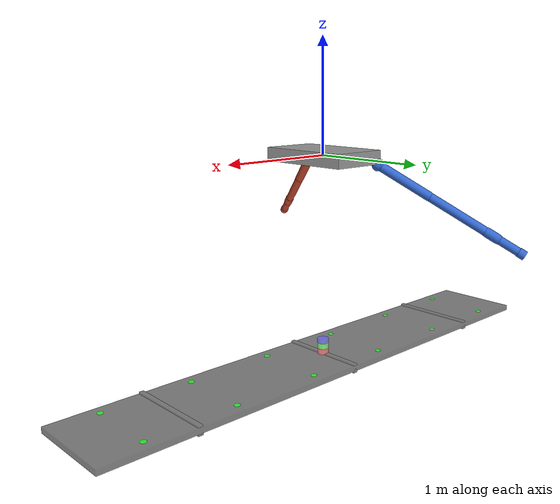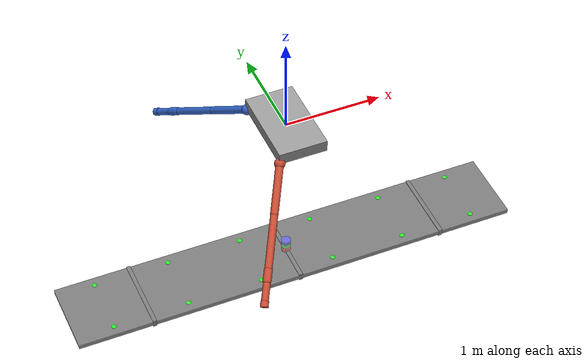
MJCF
<mujoco model="VISPA_crawling_rwa3_7dof_01pct">

  <!-- ==================== COMPILER ==================== -->
  <compiler angle="radian" eulerseq="XYZ" autolimits="true"/>

  <!-- ==================== OPTIONS ==================== -->
  <option gravity="0 0 0" timestep="0.001" integrator="RK4">
    <!-- RK4: best momentum conservation for coupled floating-base systems -->
    <flag energy="enable" contact="enable"/>
  </option>

  <!-- ==================== VISUAL ==================== -->
  <visual>
    <headlight diffuse="0.6 0.6 0.6" ambient="0.3 0.3 0.3"/>
    <rgba com="0 1 0 0" contactforce="1 0 0 0.5"/>
    <scale com="0.05" contactwidth="0.02" contactheight="0.05"
           forcewidth="0.02" framelength="0.15" framewidth="0.005"/>
  </visual>

  <!-- ==================== DEFAULTS ==================== -->
  <default>
    <!-- Robot joints -->
    <default class="robot_joint">
      <joint damping="0.05" armature="0.05" limited="true"
             range="-3.14159 3.14159"/>
      <default class="arm_a">
        <geom rgba="0.2 0.4 0.8 1" contype="0" conaffinity="0"/>
      </default>
      <default class="arm_b">
        <geom rgba="0.8 0.3 0.2 1" contype="0" conaffinity="0"/>
      </default>
    </default>
    <!-- Structure -->
    <default class="structure">
      <geom rgba="0.4 0.4 0.4 0.8" contype="2" conaffinity="2"/>
    </default>
    <!-- Anchor sites -->
    <default class="anchor">
      <site type="cylinder" size="0.025 0.005" rgba="0 1 0 0.8"/>
    </default>
    <!-- Gripper sites (on tool tips) -->
    <default class="gripper">
      <site type="sphere" size="0.03" rgba="1 1 0 0.8"/>
    </default>
  </default>

  <!-- ==================== WORLDBODY ==================== -->
  <worldbody>
    <!-- Ambient light -->
    <light pos="0 0 5" dir="0 0 -1" diffuse="0.8 0.8 0.8" castshadow="false"/>
    <light pos="3 3 3" dir="-1 -1 -1" diffuse="0.5 0.5 0.5" castshadow="true"/>

    <!-- ============ FLOATING STRUCTURE ============ -->
    <body name="structure" pos="0 0 -1.8">
      <freejoint name="structure_free"/>
      <inertial pos="0 0 0" mass="71100"
                fullinertia="597 1493 1777 0 0 0"/>
      <!-- Main beam -->
      <geom class="structure" type="box" size="2.4 0.4 0.025" name="beam"/>
      <!-- Cross-beams for rigidity visualization -->
      <geom class="structure" type="box" size="0.02 0.4 0.04" pos="-1.6 0 0"/>
      <geom class="structure" type="box" size="0.02 0.4 0.04" pos="0 0 0"/>
      <geom class="structure" type="box" size="0.02 0.4 0.04" pos="1.6 0 0"/>

      <!-- Anchor sites — row A (y = +0.3) -->
      <site name="anchor_1a" class="anchor" pos="-2.0  0.3 0.025"/>
      <site name="anchor_2a" class="anchor" pos="-1.2  0.3 0.025"/>
      <site name="anchor_3a" class="anchor" pos="-0.4  0.3 0.025"/>
      <site name="anchor_4a" class="anchor" pos=" 0.4  0.3 0.025"/>
      <site name="anchor_5a" class="anchor" pos=" 1.2  0.3 0.025"/>
      <site name="anchor_6a" class="anchor" pos=" 2.0  0.3 0.025"/>
      <!-- Anchor sites — row B (y = -0.3) -->
      <site name="anchor_1b" class="anchor" pos="-2.0 -0.3 0.025"/>
      <site name="anchor_2b" class="anchor" pos="-1.2 -0.3 0.025"/>
      <site name="anchor_3b" class="anchor" pos="-0.4 -0.3 0.025"/>
      <site name="anchor_4b" class="anchor" pos=" 0.4 -0.3 0.025"/>
      <site name="anchor_5b" class="anchor" pos=" 1.2 -0.3 0.025"/>
      <site name="anchor_6b" class="anchor" pos=" 2.0 -0.3 0.025"/>

      <!-- ============ REACTION WHEEL ASSEMBLY (3 orthogonal axes, Hsw=I3) ============ -->

      <!-- Wheel X: spin axis along structure X -->
      <!-- Inertia: spin=0.01 kg.m2, transverse=0.006 kg.m2 (satisfies triangle ineq.) -->
      <body name="rwa_x" pos="0 0 0.05">
        <inertial pos="0 0 0" mass="0.5"
                  fullinertia="0.01 0.006 0.006 0 0 0"/>
        <joint name="rw_x" type="hinge" axis="1 0 0" damping="1e-4" armature="0.01"/>
        <geom type="cylinder" size="0.05 0.02" rgba="0.8 0.2 0.2 0.7"
              contype="0" conaffinity="0"/>
      </body>
      <!-- Wheel Y: spin axis along structure Y -->
      <body name="rwa_y" pos="0 0 0.10">
        <inertial pos="0 0 0" mass="0.5"
                  fullinertia="0.006 0.01 0.006 0 0 0"/>
        <joint name="rw_y" type="hinge" axis="0 1 0" damping="1e-4" armature="0.01"/>
        <geom type="cylinder" size="0.05 0.02" rgba="0.2 0.8 0.2 0.7"
              contype="0" conaffinity="0"/>
      </body>
      <!-- Wheel Z: spin axis along structure Z -->
      <body name="rwa_z" pos="0 0 0.15">
        <inertial pos="0 0 0" mass="0.5"
                  fullinertia="0.006 0.006 0.01 0 0 0"/>
        <joint name="rw_z" type="hinge" axis="0 0 1" damping="1e-4" armature="0.01"/>
        <geom type="cylinder" size="0.05 0.02" rgba="0.2 0.2 0.8 0.7"
              contype="0" conaffinity="0"/>
      </body>
    </body>

    <!-- ============ ROBOT: TORSO (floating base) ============ -->
    <body name="torso" pos="0 0 0">
      <freejoint name="root"/>
      <inertial pos="0 0 0" mass="40.0"
                fullinertia="0.17980580 0.17982988 0.24241079 0 0 0"/>
      <!-- Torso geom: flat box spanning between shoulder joints -->
      <geom type="box" size="0.25 0.43 0.06" rgba="0.6 0.6 0.6 1"
            contype="0" conaffinity="0" name="torso_geom"/>
      <!-- Torso frame site for visualization -->
      <site name="torso_imu" size="0.02" rgba="1 1 1 0.5"/>

      <!-- ========== ARM A (blue, 7-DOF) ========== -->
      <body name="Link_1_a" pos="-0.240 0.41469 -0.064498"
            euler="-2.0944 0 0.5236">
        <joint name="Joint_1_a" class="robot_joint" type="hinge" axis="0 0 1"/>
        <inertial pos="0 -0.029 -0.043" mass="2.328"
                  fullinertia="0.012 0.007 0.008 0 0 0.003"/>
        <geom class="arm_a" type="sphere" size="0.055" name="link1a_geom"/>

        <body name="Link_2_a" pos="0 0 0"
              euler="1.57079632679 -1.57079632679 0">
          <joint name="Joint_2_a" class="robot_joint" type="hinge" axis="0 0 1"/>
          <inertial pos="0.25 0 0.142" mass="3.995"
                    fullinertia="0.010 0.578 0.574 0 0 0"/>
          <geom class="arm_a" type="capsule" fromto="0 0 0  0.5 0 0"
                size="0.04" name="link2a_geom"/>

          <body name="Link_3_a" pos="0.5 0 0"
                euler="0 0 -1.57079632679">
            <joint name="Joint_3_a" class="robot_joint" type="hinge" axis="0 0 1"/>
            <inertial pos="0 0.043 0.029" mass="2.328"
                      fullinertia="0.012 0.008 0.007 0 0 0.003"/>
            <geom class="arm_a" type="capsule" fromto="0 0 0  0 0.65 0"
                  size="0.038" name="link3a_geom"/>

            <!-- NEW: Elbow roll joint (Joint_4_a, Y-axis hinge) -->
            <body name="Link_4_a" pos="0 0 0">
              <joint name="Joint_4_a" class="robot_joint" type="hinge" axis="0 1 0"/>
              <inertial pos="0 0 0" mass="0.5"
                        fullinertia="0.001 0.001 0.001 0 0 0"/>
              <geom class="arm_a" type="sphere" size="0.035" name="link4a_geom"/>

              <!-- Old Link_4_a -> now Link_5_a -->
              <body name="Link_5_a" pos="0 0.65 0"
                    euler="-1.57079632679 0 0">
                <joint name="Joint_5_a" class="robot_joint" type="hinge" axis="0 0 1"/>
                <inertial pos="0 -0.043 -0.210" mass="3.157"
                          fullinertia="0.199 0.193 0.01 0 0 0.01"/>
                <geom class="arm_a" type="capsule" fromto="0 0 0  0 0 -0.1"
                      size="0.042" name="link5a_geom"/>

                <!-- Old Link_5_a -> now Link_6_a -->
                <body name="Link_6_a" pos="0 0 -0.1"
                      euler="1.57079632679 0 0">
                  <joint name="Joint_6_a" class="robot_joint" type="hinge" axis="0 0 1"/>
                  <inertial pos="0 0.125 -0.007" mass="2.695"
                            fullinertia="0.029 0.006 0.027 0 0 -0.001"/>
                  <geom class="arm_a" type="capsule" fromto="0 0 0  0 0.325 0"
                        size="0.036" name="link6a_geom"/>

                  <!-- Old Link_6_a -> now Link_7_a -->
                  <body name="Link_7_a" pos="0 0.325 0"
                        euler="-1.57079632679 0 0">
                    <joint name="Joint_7_a" class="robot_joint" type="hinge" axis="0 0 1"/>
                    <inertial pos="0 0 0" mass="0.924"
                              fullinertia="0.002 0.002 0.001 0 0 0"/>
                    <geom class="arm_a" type="cylinder" size="0.04 0.03"
                          name="link7a_geom"/>

                    <body name="tool_a" pos="0 0 0">
                      <inertial pos="0 0 0" mass="0.1"
                                fullinertia="0.0001 0.0001 0.0001 0 0 0"/>
                      <geom class="arm_a" type="sphere" size="0.025"
                            name="tool_a_geom" rgba="0.2 0.4 0.8 0.5"/>
                      <site name="gripper_a" class="gripper"/>
                    </body>

                  </body>
                </body>
              </body>
            </body>
          </body>
        </body>
      </body>

      <!-- ========== ARM B (red, 7-DOF) ========== -->
      <body name="Link_1_b" pos="-0.240 -0.41469 -0.064498"
            euler="1.047197551 3.14159265359 -0.5236">
        <joint name="Joint_1_b" class="robot_joint" type="hinge" axis="0 0 1"/>
        <inertial pos="0 -0.029 -0.043" mass="2.328"
                  fullinertia="0.012 0.007 0.008 0 0 0.003"/>
        <geom class="arm_b" type="sphere" size="0.055" name="link1b_geom"/>

        <body name="Link_2_b" pos="0 0 0"
              euler="1.57079632679 -1.57079632679 0">
          <joint name="Joint_2_b" class="robot_joint" type="hinge" axis="0 0 1"/>
          <inertial pos="0.25 0 0.142" mass="3.995"
                    fullinertia="0.010 0.578 0.574 0 0 0"/>
          <geom class="arm_b" type="capsule" fromto="0 0 0  0.5 0 0"
                size="0.04" name="link2b_geom"/>

          <body name="Link_3_b" pos="0.5 0 0"
                euler="0 0 -1.57079632679">
            <joint name="Joint_3_b" class="robot_joint" type="hinge" axis="0 0 1"/>
            <inertial pos="0 0.043 0.029" mass="2.328"
                      fullinertia="0.012 0.008 0.007 0 0 0.003"/>
            <geom class="arm_b" type="capsule" fromto="0 0 0  0 0.65 0"
                  size="0.038" name="link3b_geom"/>

            <!-- NEW: Elbow roll joint (Joint_4_b, Y-axis hinge) -->
            <body name="Link_4_b" pos="0 0 0">
              <joint name="Joint_4_b" class="robot_joint" type="hinge" axis="0 1 0"/>
              <inertial pos="0 0 0" mass="0.5"
                        fullinertia="0.001 0.001 0.001 0 0 0"/>
              <geom class="arm_b" type="sphere" size="0.035" name="link4b_geom"/>

              <!-- Old Link_4_b -> now Link_5_b -->
              <body name="Link_5_b" pos="0 0.65 0"
                    euler="-1.57079632679 0 0">
                <joint name="Joint_5_b" class="robot_joint" type="hinge" axis="0 0 1"/>
                <inertial pos="0 -0.043 -0.210" mass="3.157"
                          fullinertia="0.199 0.193 0.01 0 0 0.01"/>
                <geom class="arm_b" type="capsule" fromto="0 0 0  0 0 -0.1"
                      size="0.042" name="link5b_geom"/>

                <!-- Old Link_5_b -> now Link_6_b -->
                <body name="Link_6_b" pos="0 0 -0.1"
                      euler="1.57079632679 0 0">
                  <joint name="Joint_6_b" class="robot_joint" type="hinge" axis="0 0 1"/>
                  <inertial pos="0 0.125 -0.007" mass="2.695"
                            fullinertia="0.029 0.006 0.027 0 0 -0.001"/>
                  <geom class="arm_b" type="capsule" fromto="0 0 0  0 0.325 0"
                        size="0.036" name="link6b_geom"/>

                  <!-- Old Link_6_b -> now Link_7_b -->
                  <body name="Link_7_b" pos="0 0.325 0"
                        euler="-1.57079632679 0 0">
                    <joint name="Joint_7_b" class="robot_joint" type="hinge" axis="0 0 1"/>
                    <inertial pos="0 0 0" mass="0.924"
                              fullinertia="0.002 0.002 0.001 0 0 0"/>
                    <geom class="arm_b" type="cylinder" size="0.04 0.03"
                          name="link7b_geom"/>

                    <body name="tool_b" pos="0 0 0">
                      <inertial pos="0 0 0" mass="0.1"
                                fullinertia="0.0001 0.0001 0.0001 0 0 0"/>
                      <geom class="arm_b" type="sphere" size="0.025"
                            name="tool_b_geom" rgba="0.8 0.3 0.2 0.5"/>
                      <site name="gripper_b" class="gripper"/>
                    </body>

                  </body>
                </body>
              </body>
            </body>
          </body>
        </body>
      </body>

    </body> <!-- end torso -->
  </worldbody>

  <!-- ==================== ACTUATORS ==================== -->
  <actuator>
    <!-- Arm A (7 joints) -->
    <motor name="act_J1a" joint="Joint_1_a" gear="1" ctrlrange="-50 50"/>
    <motor name="act_J2a" joint="Joint_2_a" gear="1" ctrlrange="-50 50"/>
    <motor name="act_J3a" joint="Joint_3_a" gear="1" ctrlrange="-50 50"/>
    <motor name="act_J4a" joint="Joint_4_a" gear="1" ctrlrange="-50 50"/>
    <motor name="act_J5a" joint="Joint_5_a" gear="1" ctrlrange="-50 50"/>
    <motor name="act_J6a" joint="Joint_6_a" gear="1" ctrlrange="-50 50"/>
    <motor name="act_J7a" joint="Joint_7_a" gear="1" ctrlrange="-50 50"/>
    <!-- Arm B (7 joints) -->
    <motor name="act_J1b" joint="Joint_1_b" gear="1" ctrlrange="-50 50"/>
    <motor name="act_J2b" joint="Joint_2_b" gear="1" ctrlrange="-50 50"/>
    <motor name="act_J3b" joint="Joint_3_b" gear="1" ctrlrange="-50 50"/>
    <motor name="act_J4b" joint="Joint_4_b" gear="1" ctrlrange="-50 50"/>
    <motor name="act_J5b" joint="Joint_5_b" gear="1" ctrlrange="-50 50"/>
    <motor name="act_J6b" joint="Joint_6_b" gear="1" ctrlrange="-50 50"/>
    <motor name="act_J7b" joint="Joint_7_b" gear="1" ctrlrange="-50 50"/>
    <!-- RWA actuators (ctrl indices 14, 15, 16) -->
    <motor name="act_rw_x" joint="rw_x" gear="1" ctrlrange="-0.5 0.5"/>
    <motor name="act_rw_y" joint="rw_y" gear="1" ctrlrange="-0.5 0.5"/>
    <motor name="act_rw_z" joint="rw_z" gear="1" ctrlrange="-0.5 0.5"/>
  </actuator>

  <!-- ==================== EQUALITY CONSTRAINTS (Gripper Welds) ==================== -->
  <equality>
    <!-- Arm A -> structure anchors (row A) -->
    <weld name="grip_a_to_1a" site1="gripper_a" site2="anchor_1a" solref="0.003 1" active="false"/>
    <weld name="grip_a_to_2a" site1="gripper_a" site2="anchor_2a" solref="0.003 1" active="false"/>
    <weld name="grip_a_to_3a" site1="gripper_a" site2="anchor_3a" solref="0.003 1" active="true"/>
    <weld name="grip_a_to_4a" site1="gripper_a" site2="anchor_4a" solref="0.003 1" active="false"/>
    <weld name="grip_a_to_5a" site1="gripper_a" site2="anchor_5a" solref="0.003 1" active="false"/>
    <weld name="grip_a_to_6a" site1="gripper_a" site2="anchor_6a" solref="0.003 1" active="false"/>

    <!-- Arm B -> structure anchors (row B) -->
    <weld name="grip_b_to_1b" site1="gripper_b" site2="anchor_1b" solref="0.003 1" active="false"/>
    <weld name="grip_b_to_2b" site1="gripper_b" site2="anchor_2b" solref="0.003 1" active="false"/>
    <weld name="grip_b_to_3b" site1="gripper_b" site2="anchor_3b" solref="0.003 1" active="true"/>
    <weld name="grip_b_to_4b" site1="gripper_b" site2="anchor_4b" solref="0.003 1" active="false"/>
    <weld name="grip_b_to_5b" site1="gripper_b" site2="anchor_5b" solref="0.003 1" active="false"/>
    <weld name="grip_b_to_6b" site1="gripper_b" site2="anchor_6b" solref="0.003 1" active="false"/>
  </equality>

  <!-- ==================== CONTACT PAIRS ==================== -->
  <contact/>

  <!-- ==================== SENSORS ==================== -->
  <sensor>
    <!-- Base pose and velocity (for MPC feedback) -->
    <framepos    name="torso_pos"    objtype="body" objname="torso"/>
    <framequat   name="torso_quat"   objtype="body" objname="torso"/>
    <framelinvel name="torso_linvel" objtype="body" objname="torso"/>
    <frameangvel name="torso_angvel" objtype="body" objname="torso"/>
    <!-- Structure attitude (for disturbance measurement) -->
    <framequat   name="struct_quat"   objtype="body" objname="structure"/>
    <frameangvel name="struct_angvel" objtype="body" objname="structure"/>
    <!-- End-effector positions -->
    <framepos name="tool_a_pos" objtype="body" objname="tool_a"/>
    <framepos name="tool_b_pos" objtype="body" objname="tool_b"/>
    <!-- Joint torque sensors (for debugging/monitoring) -->
    <jointactuatorfrc name="tau_J1a" joint="Joint_1_a"/>
    <jointactuatorfrc name="tau_J1b" joint="Joint_1_b"/>
    <!-- RWA speed sensors -->
    <jointvel name="rw_x_vel" joint="rw_x"/>
    <jointvel name="rw_y_vel" joint="rw_y"/>
    <jointvel name="rw_z_vel" joint="rw_z"/>
  </sensor>

  <!-- ==================== KEYFRAMES ==================== -->
  <keyframe>
    <!-- Home: qpos layout with RWA:
         [struct_pos(3) struct_quat(4) rw_x rw_y rw_z
          torso_pos(3) torso_quat(4) J1a..J7a J1b..J7b]
         Total: 7 + 3 + 7 + 14 = 31 DOF -->
    <key name="home" qpos="0 0 -1.8  1 0 0 0  0 0 0
                            0 0 0  1 0 0 0
                            0 0 0 0 0 0 0  0 0 0 0 0 0 0"/>
  </keyframe>

</mujoco>
